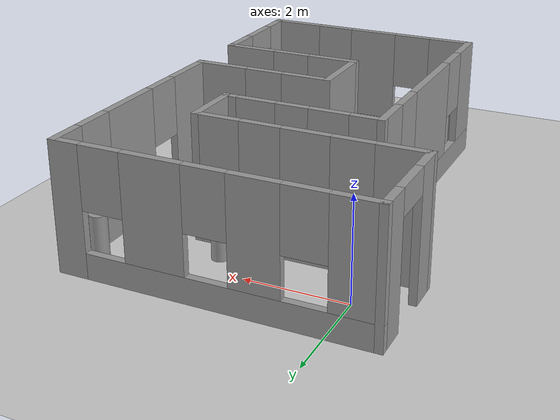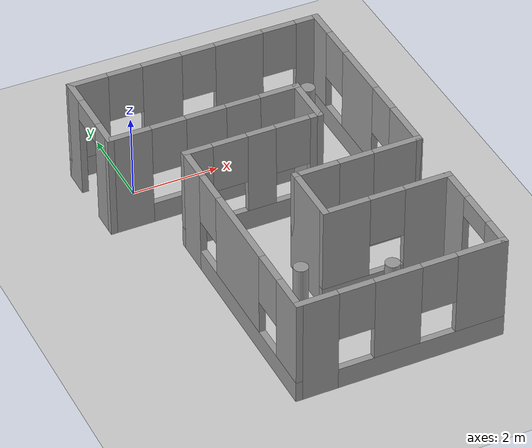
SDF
<sdf version="1.6">
 <world name="default">
  <light name="sun" type="directional">
   <pose>0 0 10 0 -0 0</pose>
   <diffuse>0.8 0.8 0.8 1</diffuse>
   <specular>0.2 0.2 0.2 1</specular>
   <attenuation>
    <range>1000</range>
    <constant>0.9</constant>
    <linear>0.01</linear>
    <quadratic>0.001</quadratic>
   </attenuation>
   <direction>-0.5 0.1 -0.9</direction>
  </light>
  <model name="ground_plane">
   <static>1</static>
   <link name="link">
    <collision name="collision">
     <geometry><plane><normal>0 0 1</normal><size>100 100</size></plane></geometry>
     <surface><friction><ode><mu>100</mu><mu2>50</mu2></ode></friction></surface>
    </collision>
    <visual name="visual">
     <cast_shadows>0</cast_shadows>
     <geometry><plane><normal>0 0 1</normal><size>100 100</size></plane></geometry>
     <material>
      <script><uri>file://media/materials/scripts/gazebo.material</uri><name>Gazebo/Grey</name></script>
     </material>
    </visual>
   </link>
  </model>
  <gravity>0 0 -9.8</gravity>
  <magnetic_field>6e-06 2.3e-05 -4.2e-05</magnetic_field>
  <atmosphere type="adiabatic"/>
  <physics name="default_physics" default="0" type="ode">
   <max_step_size>0.001</max_step_size>
   <real_time_factor>1</real_time_factor>
   <real_time_update_rate>1000</real_time_update_rate>
  </physics>
  <scene><ambient>0.4 0.4 0.4 1</ambient><background>0.7 0.7 0.7 1</background><shadows>1</shadows></scene>
  <spherical_coordinates>
   <surface_model>EARTH_WGS84</surface_model>
   <latitude_deg>0</latitude_deg>
   <longitude_deg>0</longitude_deg>
   <elevation>0</elevation>
   <heading_deg>0</heading_deg>
  </spherical_coordinates>
  <model name="simple_model">
   <pose>2.00923 -3.19242 0 0 -0 1.5706</pose>
   <link name="Wall_11">
    <pose>-3.1 -2.925 0 0 -0 0</pose>
    <visual name="Wall_11_Visual_0">
     <pose>-0.892025 0 1.25 0 -0 0</pose>
     <geometry><box><size>0.715949 0.15 2.5</size></box></geometry>
     <material>
      <script><uri>file://media/materials/scripts/gazebo.material</uri><name>Gazebo/Grey</name></script>
      <ambient>1 1 1 1</ambient>
     </material>
     <meta><layer>0</layer></meta>
    </visual>
    <collision name="Wall_11_Collision_0">
     <geometry><box><size>0.715949 0.15 2.5</size></box></geometry>
     <pose>-0.892025 0 1.25 0 -0 0</pose>
    </collision>
    <visual name="Wall_11_Visual_1">
     <pose>0.807975 0 1.25 0 -0 0</pose>
     <geometry><box><size>0.884051 0.15 2.5</size></box></geometry>
     <material>
      <script><uri>file://media/materials/scripts/gazebo.material</uri><name>Gazebo/Grey</name></script>
      <ambient>1 1 1 1</ambient>
     </material>
     <meta><layer>0</layer></meta>
    </visual>
    <collision name="Wall_11_Collision_1">
     <geometry><box><size>0.884051 0.15 2.5</size></box></geometry>
     <pose>0.807975 0 1.25 0 -0 0</pose>
    </collision>
    <visual name="Wall_11_Visual_2">
     <pose>-0.084051 0 2.25 0 -0 0</pose>
     <geometry><box><size>0.9 0.15 0.5</size></box></geometry>
     <material>
      <script><uri>file://media/materials/scripts/gazebo.material</uri><name>Gazebo/Grey</name></script>
      <ambient>1 1 1 1</ambient>
     </material>
     <meta><layer>0</layer></meta>
    </visual>
    <collision name="Wall_11_Collision_2">
     <geometry><box><size>0.9 0.15 0.5</size></box></geometry>
     <pose>-0.084051 0 2.25 0 -0 0</pose>
    </collision>
   </link>
   <link name="Wall_12">
    <pose>-1.925 -1.5 0 0 -0 1.5708</pose>
    <visual name="Wall_12_Visual_0">
     <pose>-0.943608 0 1.25 0 -0 0</pose>
     <geometry><box><size>1.11278 0.15 2.5</size></box></geometry>
     <material>
      <script><uri>file://media/materials/scripts/gazebo.material</uri><name>Gazebo/Grey</name></script>
      <ambient>1 1 1 1</ambient>
     </material>
     <meta><layer>0</layer></meta>
    </visual>
    <collision name="Wall_12_Collision_0">
     <geometry><box><size>1.11278 0.15 2.5</size></box></geometry>
     <pose>-0.943608 0 1.25 0 -0 0</pose>
    </collision>
    <visual name="Wall_12_Visual_1">
     <pose>0.556392 0 0.25 0 -0 0</pose>
     <geometry><box><size>1.88722 0.15 0.5</size></box></geometry>
     <material>
      <script><uri>file://media/materials/scripts/gazebo.material</uri><name>Gazebo/Grey</name></script>
      <ambient>1 1 1 1</ambient>
     </material>
     <meta><layer>0</layer></meta>
    </visual>
    <collision name="Wall_12_Collision_1">
     <geometry><box><size>1.88722 0.15 0.5</size></box></geometry>
     <pose>0.556392 0 0.25 0 -0 0</pose>
    </collision>
    <visual name="Wall_12_Visual_2">
     <pose>0.956392 0 1.5 0 -0 0</pose>
     <geometry><box><size>1.08722 0.15 2</size></box></geometry>
     <material>
      <script><uri>file://media/materials/scripts/gazebo.material</uri><name>Gazebo/Grey</name></script>
      <ambient>1 1 1 1</ambient>
     </material>
     <meta><layer>0</layer></meta>
    </visual>
    <collision name="Wall_12_Collision_2">
     <geometry><box><size>1.08722 0.15 2</size></box></geometry>
     <pose>0.956392 0 1.5 0 -0 0</pose>
    </collision>
    <visual name="Wall_12_Visual_3">
     <pose>0.012784 0 1.9 0 -0 0</pose>
     <geometry><box><size>0.8 0.15 1.2</size></box></geometry>
     <material>
      <script><uri>file://media/materials/scripts/gazebo.material</uri><name>Gazebo/Grey</name></script>
      <ambient>1 1 1 1</ambient>
     </material>
     <meta><layer>0</layer></meta>
    </visual>
    <collision name="Wall_12_Collision_3">
     <geometry><box><size>0.8 0.15 1.2</size></box></geometry>
     <pose>0.012784 0 1.9 0 -0 0</pose>
    </collision>
   </link>
   <link name="Wall_13">
    <collision name="Wall_13_Collision">
     <geometry><box><size>1.5 0.15 2.5</size></box></geometry>
     <pose>0 0 1.25 0 -0 0</pose>
    </collision>
    <visual name="Wall_13_Visual">
     <pose>0 0 1.25 0 -0 0</pose>
     <geometry><box><size>1.5 0.15 2.5</size></box></geometry>
     <material>
      <script><uri>file://media/materials/scripts/gazebo.material</uri><name>Gazebo/Grey</name></script>
      <ambient>1 1 1 1</ambient>
     </material>
     <meta><layer>0</layer></meta>
    </visual>
    <pose>-1.25 -0.075 0 0 -0 0</pose>
   </link>
   <link name="Wall_14">
    <pose>-0.575 -1.5 0 0 0 -1.5708</pose>
    <visual name="Wall_14_Visual_0">
     <pose>-0.9716 0 1.25 0 -0 0</pose>
     <geometry><box><size>1.0568 0.15 2.5</size></box></geometry>
     <material>
      <script><uri>file://media/materials/scripts/gazebo.material</uri><name>Gazebo/Grey</name></script>
      <ambient>1 1 1 1</ambient>
     </material>
     <meta><layer>0</layer></meta>
    </visual>
    <collision name="Wall_14_Collision_0">
     <geometry><box><size>1.0568 0.15 2.5</size></box></geometry>
     <pose>-0.9716 0 1.25 0 -0 0</pose>
    </collision>
    <visual name="Wall_14_Visual_1">
     <pose>0.5284 0 0.25 0 -0 0</pose>
     <geometry><box><size>1.9432 0.15 0.5</size></box></geometry>
     <material>
      <script><uri>file://media/materials/scripts/gazebo.material</uri><name>Gazebo/Grey</name></script>
      <ambient>1 1 1 1</ambient>
     </material>
     <meta><layer>0</layer></meta>
    </visual>
    <collision name="Wall_14_Collision_1">
     <geometry><box><size>1.9432 0.15 0.5</size></box></geometry>
     <pose>0.5284 0 0.25 0 -0 0</pose>
    </collision>
    <visual name="Wall_14_Visual_2">
     <pose>0.9284 0 1.5 0 -0 0</pose>
     <geometry><box><size>1.1432 0.15 2</size></box></geometry>
     <material>
      <script><uri>file://media/materials/scripts/gazebo.material</uri><name>Gazebo/Grey</name></script>
      <ambient>1 1 1 1</ambient>
     </material>
     <meta><layer>0</layer></meta>
    </visual>
    <collision name="Wall_14_Collision_2">
     <geometry><box><size>1.1432 0.15 2</size></box></geometry>
     <pose>0.9284 0 1.5 0 -0 0</pose>
    </collision>
    <visual name="Wall_14_Visual_3">
     <pose>-0.043201 0 1.9 0 -0 0</pose>
     <geometry><box><size>0.8 0.15 1.2</size></box></geometry>
     <material>
      <script><uri>file://media/materials/scripts/gazebo.material</uri><name>Gazebo/Grey</name></script>
      <ambient>1 1 1 1</ambient>
     </material>
     <meta><layer>0</layer></meta>
    </visual>
    <collision name="Wall_14_Collision_3">
     <geometry><box><size>0.8 0.15 1.2</size></box></geometry>
     <pose>-0.043201 0 1.9 0 -0 0</pose>
    </collision>
   </link>
   <link name="Wall_15">
    <pose>1.85 -2.925 0 0 -0 0</pose>
    <visual name="Wall_15_Visual_0">
     <pose>-1.88343 0 1.25 0 -0 0</pose>
     <geometry><box><size>1.23315 0.15 2.5</size></box></geometry>
     <material>
      <script><uri>file://media/materials/scripts/gazebo.material</uri><name>Gazebo/Grey</name></script>
      <ambient>1 1 1 1</ambient>
     </material>
     <meta><layer>0</layer></meta>
    </visual>
    <collision name="Wall_15_Collision_0">
     <geometry><box><size>1.23315 0.15 2.5</size></box></geometry>
     <pose>-1.88343 0 1.25 0 -0 0</pose>
    </collision>
    <visual name="Wall_15_Visual_1">
     <pose>0.616573 0 0.25 0 -0 0</pose>
     <geometry><box><size>3.76685 0.15 0.5</size></box></geometry>
     <material>
      <script><uri>file://media/materials/scripts/gazebo.material</uri><name>Gazebo/Grey</name></script>
      <ambient>1 1 1 1</ambient>
     </material>
     <meta><layer>0</layer></meta>
    </visual>
    <collision name="Wall_15_Collision_1">
     <geometry><box><size>3.76685 0.15 0.5</size></box></geometry>
     <pose>0.616573 0 0.25 0 -0 0</pose>
    </collision>
    <visual name="Wall_15_Visual_2">
     <pose>0.243386 0 1.5 0 -0 0</pose>
     <geometry><box><size>1.42048 0.15 2</size></box></geometry>
     <material>
      <script><uri>file://media/materials/scripts/gazebo.material</uri><name>Gazebo/Grey</name></script>
      <ambient>1 1 1 1</ambient>
     </material>
     <meta><layer>0</layer></meta>
    </visual>
    <collision name="Wall_15_Collision_2">
     <geometry><box><size>1.42048 0.15 2</size></box></geometry>
     <pose>0.243386 0 1.5 0 -0 0</pose>
    </collision>
    <visual name="Wall_15_Visual_3">
     <pose>2.12681 0 1.5 0 -0 0</pose>
     <geometry><box><size>0.746376 0.15 2</size></box></geometry>
     <material>
      <script><uri>file://media/materials/scripts/gazebo.material</uri><name>Gazebo/Grey</name></script>
      <ambient>1 1 1 1</ambient>
     </material>
     <meta><layer>0</layer></meta>
    </visual>
    <collision name="Wall_15_Collision_3">
     <geometry><box><size>0.746376 0.15 2</size></box></geometry>
     <pose>2.12681 0 1.5 0 -0 0</pose>
    </collision>
    <visual name="Wall_15_Visual_4">
     <pose>-0.866853 0 1.9 0 -0 0</pose>
     <geometry><box><size>0.8 0.15 1.2</size></box></geometry>
     <material>
      <script><uri>file://media/materials/scripts/gazebo.material</uri><name>Gazebo/Grey</name></script>
      <ambient>1 1 1 1</ambient>
     </material>
     <meta><layer>0</layer></meta>
    </visual>
    <collision name="Wall_15_Collision_4">
     <geometry><box><size>0.8 0.15 1.2</size></box></geometry>
     <pose>-0.866853 0 1.9 0 -0 0</pose>
    </collision>
    <visual name="Wall_15_Visual_5">
     <pose>1.35362 0 1.9 0 -0 0</pose>
     <geometry><box><size>0.8 0.15 1.2</size></box></geometry>
     <material>
      <script><uri>file://media/materials/scripts/gazebo.material</uri><name>Gazebo/Grey</name></script>
      <ambient>1 1 1 1</ambient>
     </material>
     <meta><layer>0</layer></meta>
    </visual>
    <collision name="Wall_15_Collision_5">
     <geometry><box><size>0.8 0.15 1.2</size></box></geometry>
     <pose>1.35362 0 1.9 0 -0 0</pose>
    </collision>
   </link>
   <link name="Wall_16">
    <pose>4.275 0 0 0 -0 1.5708</pose>
    <visual name="Wall_16_Visual_0">
     <pose>-2.70216 0 1.25 0 -0 0</pose>
     <geometry><box><size>0.595686 0.15 2.5</size></box></geometry>
     <material>
      <script><uri>file://media/materials/scripts/gazebo.material</uri><name>Gazebo/Grey</name></script>
      <ambient>1 1 1 1</ambient>
     </material>
     <meta><layer>0</layer></meta>
    </visual>
    <collision name="Wall_16_Collision_0">
     <geometry><box><size>0.595686 0.15 2.5</size></box></geometry>
     <pose>-2.70216 0 1.25 0 -0 0</pose>
    </collision>
    <visual name="Wall_16_Visual_1">
     <pose>0.297843 0 0.25 0 -0 0</pose>
     <geometry><box><size>5.40431 0.15 0.5</size></box></geometry>
     <material>
      <script><uri>file://media/materials/scripts/gazebo.material</uri><name>Gazebo/Grey</name></script>
      <ambient>1 1 1 1</ambient>
     </material>
     <meta><layer>0</layer></meta>
    </visual>
    <collision name="Wall_16_Collision_1">
     <geometry><box><size>5.40431 0.15 0.5</size></box></geometry>
     <pose>0.297843 0 0.25 0 -0 0</pose>
    </collision>
    <visual name="Wall_16_Visual_2">
     <pose>-1.03095 0 1.5 0 -0 0</pose>
     <geometry><box><size>1.14672 0.15 2</size></box></geometry>
     <material>
      <script><uri>file://media/materials/scripts/gazebo.material</uri><name>Gazebo/Grey</name></script>
      <ambient>1 1 1 1</ambient>
     </material>
     <meta><layer>0</layer></meta>
    </visual>
    <collision name="Wall_16_Collision_2">
     <geometry><box><size>1.14672 0.15 2</size></box></geometry>
     <pose>-1.03095 0 1.5 0 -0 0</pose>
    </collision>
    <visual name="Wall_16_Visual_3">
     <pose>0.809305 0 1.5 0 -0 0</pose>
     <geometry><box><size>0.933797 0.15 2</size></box></geometry>
     <material>
      <script><uri>file://media/materials/scripts/gazebo.material</uri><name>Gazebo/Grey</name></script>
      <ambient>1 1 1 1</ambient>
     </material>
     <meta><layer>0</layer></meta>
    </visual>
    <collision name="Wall_16_Collision_3">
     <geometry><box><size>0.933797 0.15 2</size></box></geometry>
     <pose>0.809305 0 1.5 0 -0 0</pose>
    </collision>
    <visual name="Wall_16_Visual_4">
     <pose>2.5381 0 1.5 0 -0 0</pose>
     <geometry><box><size>0.923796 0.15 2</size></box></geometry>
     <material>
      <script><uri>file://media/materials/scripts/gazebo.material</uri><name>Gazebo/Grey</name></script>
      <ambient>1 1 1 1</ambient>
     </material>
     <meta><layer>0</layer></meta>
    </visual>
    <collision name="Wall_16_Collision_4">
     <geometry><box><size>0.923796 0.15 2</size></box></geometry>
     <pose>2.5381 0 1.5 0 -0 0</pose>
    </collision>
    <visual name="Wall_16_Visual_5">
     <pose>-2.00431 0 1.9 0 -0 0</pose>
     <geometry><box><size>0.8 0.15 1.2</size></box></geometry>
     <material>
      <script><uri>file://media/materials/scripts/gazebo.material</uri><name>Gazebo/Grey</name></script>
      <ambient>1 1 1 1</ambient>
     </material>
     <meta><layer>0</layer></meta>
    </visual>
    <collision name="Wall_16_Collision_5">
     <geometry><box><size>0.8 0.15 1.2</size></box></geometry>
     <pose>-2.00431 0 1.9 0 -0 0</pose>
    </collision>
    <visual name="Wall_16_Visual_6">
     <pose>-0.057594 0 1.9 0 -0 0</pose>
     <geometry><box><size>0.8 0.15 1.2</size></box></geometry>
     <material>
      <script><uri>file://media/materials/scripts/gazebo.material</uri><name>Gazebo/Grey</name></script>
      <ambient>1 1 1 1</ambient>
     </material>
     <meta><layer>0</layer></meta>
    </visual>
    <collision name="Wall_16_Collision_6">
     <geometry><box><size>0.8 0.15 1.2</size></box></geometry>
     <pose>-0.057594 0 1.9 0 -0 0</pose>
    </collision>
    <visual name="Wall_16_Visual_7">
     <pose>1.6762 0 1.9 0 -0 0</pose>
     <geometry><box><size>0.8 0.15 1.2</size></box></geometry>
     <material>
      <script><uri>file://media/materials/scripts/gazebo.material</uri><name>Gazebo/Grey</name></script>
      <ambient>1 1 1 1</ambient>
     </material>
     <meta><layer>0</layer></meta>
    </visual>
    <collision name="Wall_16_Collision_7">
     <geometry><box><size>0.8 0.15 1.2</size></box></geometry>
     <pose>1.6762 0 1.9 0 -0 0</pose>
    </collision>
   </link>
   <link name="Wall_17">
    <pose>3.225 2.925 0 0 -0 3.14159</pose>
    <visual name="Wall_17_Visual_0">
     <pose>-0.792021 0 1.25 0 -0 0</pose>
     <geometry><box><size>0.665958 0.15 2.5</size></box></geometry>
     <material>
      <script><uri>file://media/materials/scripts/gazebo.material</uri><name>Gazebo/Grey</name></script>
      <ambient>1 1 1 1</ambient>
     </material>
     <meta><layer>0</layer></meta>
    </visual>
    <collision name="Wall_17_Collision_0">
     <geometry><box><size>0.665958 0.15 2.5</size></box></geometry>
     <pose>-0.792021 0 1.25 0 -0 0</pose>
    </collision>
    <visual name="Wall_17_Visual_1">
     <pose>0.782979 0 1.25 0 -0 0</pose>
     <geometry><box><size>0.684042 0.15 2.5</size></box></geometry>
     <material>
      <script><uri>file://media/materials/scripts/gazebo.material</uri><name>Gazebo/Grey</name></script>
      <ambient>1 1 1 1</ambient>
     </material>
     <meta><layer>0</layer></meta>
    </visual>
    <collision name="Wall_17_Collision_1">
     <geometry><box><size>0.684042 0.15 2.5</size></box></geometry>
     <pose>0.782979 0 1.25 0 -0 0</pose>
    </collision>
    <visual name="Wall_17_Visual_2">
     <pose>-0.009042 0 2.25 0 -0 0</pose>
     <geometry><box><size>0.9 0.15 0.5</size></box></geometry>
     <material>
      <script><uri>file://media/materials/scripts/gazebo.material</uri><name>Gazebo/Grey</name></script>
      <ambient>1 1 1 1</ambient>
     </material>
     <meta><layer>0</layer></meta>
    </visual>
    <collision name="Wall_17_Collision_2">
     <geometry><box><size>0.9 0.15 0.5</size></box></geometry>
     <pose>-0.009042 0 2.25 0 -0 0</pose>
    </collision>
   </link>
   <link name="Wall_18">
    <pose>2.175 0.75 0 0 0 -1.5708</pose>
    <visual name="Wall_18_Visual_0">
     <pose>-1.74248 0 1.25 0 -0 0</pose>
     <geometry><box><size>1.01505 0.15 2.5</size></box></geometry>
     <material>
      <script><uri>file://media/materials/scripts/gazebo.material</uri><name>Gazebo/Grey</name></script>
      <ambient>1 1 1 1</ambient>
     </material>
     <meta><layer>0</layer></meta>
    </visual>
    <collision name="Wall_18_Collision_0">
     <geometry><box><size>1.01505 0.15 2.5</size></box></geometry>
     <pose>-1.74248 0 1.25 0 -0 0</pose>
    </collision>
    <visual name="Wall_18_Visual_1">
     <pose>0.507524 0 0.25 0 -0 0</pose>
     <geometry><box><size>3.48495 0.15 0.5</size></box></geometry>
     <material>
      <script><uri>file://media/materials/scripts/gazebo.material</uri><name>Gazebo/Grey</name></script>
      <ambient>1 1 1 1</ambient>
     </material>
     <meta><layer>0</layer></meta>
    </visual>
    <collision name="Wall_18_Collision_1">
     <geometry><box><size>3.48495 0.15 0.5</size></box></geometry>
     <pose>0.507524 0 0.25 0 -0 0</pose>
    </collision>
    <visual name="Wall_18_Visual_2">
     <pose>0.031948 0 1.5 0 -0 0</pose>
     <geometry><box><size>0.933797 0.15 2</size></box></geometry>
     <material>
      <script><uri>file://media/materials/scripts/gazebo.material</uri><name>Gazebo/Grey</name></script>
      <ambient>1 1 1 1</ambient>
     </material>
     <meta><layer>0</layer></meta>
    </visual>
    <collision name="Wall_18_Collision_2">
     <geometry><box><size>0.933797 0.15 2</size></box></geometry>
     <pose>0.031948 0 1.5 0 -0 0</pose>
    </collision>
    <visual name="Wall_18_Visual_3">
     <pose>1.77442 0 1.5 0 -0 0</pose>
     <geometry><box><size>0.951154 0.15 2</size></box></geometry>
     <material>
      <script><uri>file://media/materials/scripts/gazebo.material</uri><name>Gazebo/Grey</name></script>
      <ambient>1 1 1 1</ambient>
     </material>
     <meta><layer>0</layer></meta>
    </visual>
    <collision name="Wall_18_Collision_3">
     <geometry><box><size>0.951154 0.15 2</size></box></geometry>
     <pose>1.77442 0 1.5 0 -0 0</pose>
    </collision>
    <visual name="Wall_18_Visual_4">
     <pose>-0.834951 0 1.9 0 -0 0</pose>
     <geometry><box><size>0.8 0.15 1.2</size></box></geometry>
     <material>
      <script><uri>file://media/materials/scripts/gazebo.material</uri><name>Gazebo/Grey</name></script>
      <ambient>1 1 1 1</ambient>
     </material>
     <meta><layer>0</layer></meta>
    </visual>
    <collision name="Wall_18_Collision_4">
     <geometry><box><size>0.8 0.15 1.2</size></box></geometry>
     <pose>-0.834951 0 1.9 0 -0 0</pose>
    </collision>
    <visual name="Wall_18_Visual_5">
     <pose>0.898846 0 1.9 0 -0 0</pose>
     <geometry><box><size>0.8 0.15 1.2</size></box></geometry>
     <material>
      <script><uri>file://media/materials/scripts/gazebo.material</uri><name>Gazebo/Grey</name></script>
      <ambient>1 1 1 1</ambient>
     </material>
     <meta><layer>0</layer></meta>
    </visual>
    <collision name="Wall_18_Collision_5">
     <geometry><box><size>0.8 0.15 1.2</size></box></geometry>
     <pose>0.898846 0 1.9 0 -0 0</pose>
    </collision>
   </link>
   <link name="Wall_19">
    <collision name="Wall_19_Collision">
     <geometry><box><size>1.25 0.15 2.5</size></box></geometry>
     <pose>0 0 1.25 0 -0 0</pose>
    </collision>
    <visual name="Wall_19_Visual">
     <pose>0 0 1.25 0 -0 0</pose>
     <geometry><box><size>1.25 0.15 2.5</size></box></geometry>
     <material>
      <script><uri>file://media/materials/scripts/gazebo.material</uri><name>Gazebo/Grey</name></script>
      <ambient>1 1 1 1</ambient>
     </material>
     <meta><layer>0</layer></meta>
    </visual>
    <pose>1.625 -1.425 0 0 -0 3.14159</pose>
   </link>
   <link name="Wall_20">
    <pose>1.075 0.125 0 0 -0 1.5708</pose>
    <visual name="Wall_20_Visual_0">
     <pose>-1.46881 0 1.25 0 -0 0</pose>
     <geometry><box><size>0.312386 0.15 2.5</size></box></geometry>
     <material>
      <script><uri>file://media/materials/scripts/gazebo.material</uri><name>Gazebo/Grey</name></script>
      <ambient>1 1 1 1</ambient>
     </material>
     <meta><layer>0</layer></meta>
    </visual>
    <collision name="Wall_20_Collision_0">
     <geometry><box><size>0.312386 0.15 2.5</size></box></geometry>
     <pose>-1.46881 0 1.25 0 -0 0</pose>
    </collision>
    <visual name="Wall_20_Visual_1">
     <pose>0.156193 0 0.25 0 -0 0</pose>
     <geometry><box><size>2.93761 0.15 0.5</size></box></geometry>
     <material>
      <script><uri>file://media/materials/scripts/gazebo.material</uri><name>Gazebo/Grey</name></script>
      <ambient>1 1 1 1</ambient>
     </material>
     <meta><layer>0</layer></meta>
    </visual>
    <collision name="Wall_20_Collision_1">
     <geometry><box><size>2.93761 0.15 0.5</size></box></geometry>
     <pose>0.156193 0 0.25 0 -0 0</pose>
    </collision>
    <visual name="Wall_20_Visual_2">
     <pose>-0.182594 0 1.5 0 -0 0</pose>
     <geometry><box><size>0.66004 0.15 2</size></box></geometry>
     <material>
      <script><uri>file://media/materials/scripts/gazebo.material</uri><name>Gazebo/Grey</name></script>
      <ambient>1 1 1 1</ambient>
     </material>
     <meta><layer>0</layer></meta>
    </visual>
    <collision name="Wall_20_Collision_2">
     <geometry><box><size>0.66004 0.15 2</size></box></geometry>
     <pose>-0.182594 0 1.5 0 -0 0</pose>
    </collision>
    <visual name="Wall_20_Visual_3">
     <pose>1.28621 0 1.5 0 -0 0</pose>
     <geometry><box><size>0.677574 0.15 2</size></box></geometry>
     <material>
      <script><uri>file://media/materials/scripts/gazebo.material</uri><name>Gazebo/Grey</name></script>
      <ambient>1 1 1 1</ambient>
     </material>
     <meta><layer>0</layer></meta>
    </visual>
    <collision name="Wall_20_Collision_3">
     <geometry><box><size>0.677574 0.15 2</size></box></geometry>
     <pose>1.28621 0 1.5 0 -0 0</pose>
    </collision>
    <visual name="Wall_20_Visual_4">
     <pose>-0.912614 0 1.9 0 -0 0</pose>
     <geometry><box><size>0.8 0.15 1.2</size></box></geometry>
     <material>
      <script><uri>file://media/materials/scripts/gazebo.material</uri><name>Gazebo/Grey</name></script>
      <ambient>1 1 1 1</ambient>
     </material>
     <meta><layer>0</layer></meta>
    </visual>
    <collision name="Wall_20_Collision_4">
     <geometry><box><size>0.8 0.15 1.2</size></box></geometry>
     <pose>-0.912614 0 1.9 0 -0 0</pose>
    </collision>
    <visual name="Wall_20_Visual_5">
     <pose>0.547426 0 1.9 0 -0 0</pose>
     <geometry><box><size>0.8 0.15 1.2</size></box></geometry>
     <material>
      <script><uri>file://media/materials/scripts/gazebo.material</uri><name>Gazebo/Grey</name></script>
      <ambient>1 1 1 1</ambient>
     </material>
     <meta><layer>0</layer></meta>
    </visual>
    <collision name="Wall_20_Collision_5">
     <geometry><box><size>0.8 0.15 1.2</size></box></geometry>
     <pose>0.547426 0 1.9 0 -0 0</pose>
    </collision>
   </link>
   <link name="Wall_21">
    <pose>-1.6 1.675 0 0 -0 3.14159</pose>
    <visual name="Wall_21_Visual_0">
     <pose>-2.28864 0 1.25 0 -0 0</pose>
     <geometry><box><size>0.922718 0.15 2.5</size></box></geometry>
     <material>
      <script><uri>file://media/materials/scripts/gazebo.material</uri><name>Gazebo/Grey</name></script>
      <ambient>1 1 1 1</ambient>
     </material>
     <meta><layer>0</layer></meta>
    </visual>
    <collision name="Wall_21_Collision_0">
     <geometry><box><size>0.922718 0.15 2.5</size></box></geometry>
     <pose>-2.28864 0 1.25 0 -0 0</pose>
    </collision>
    <visual name="Wall_21_Visual_1">
     <pose>0.461359 0 0.25 0 -0 0</pose>
     <geometry><box><size>4.57728 0.15 0.5</size></box></geometry>
     <material>
      <script><uri>file://media/materials/scripts/gazebo.material</uri><name>Gazebo/Grey</name></script>
      <ambient>1 1 1 1</ambient>
     </material>
     <meta><layer>0</layer></meta>
    </visual>
    <collision name="Wall_21_Collision_1">
     <geometry><box><size>4.57728 0.15 0.5</size></box></geometry>
     <pose>0.461359 0 0.25 0 -0 0</pose>
    </collision>
    <visual name="Wall_21_Visual_2">
     <pose>0.002341 0 1.5 0 -0 0</pose>
     <geometry><box><size>2.05925 0.15 2</size></box></geometry>
     <material>
      <script><uri>file://media/materials/scripts/gazebo.material</uri><name>Gazebo/Grey</name></script>
      <ambient>1 1 1 1</ambient>
     </material>
     <meta><layer>0</layer></meta>
    </visual>
    <collision name="Wall_21_Collision_2">
     <geometry><box><size>2.05925 0.15 2</size></box></geometry>
     <pose>0.002341 0 1.5 0 -0 0</pose>
    </collision>
    <visual name="Wall_21_Visual_3">
     <pose>2.29098 0 1.5 0 -0 0</pose>
     <geometry><box><size>0.918037 0.15 2</size></box></geometry>
     <material>
      <script><uri>file://media/materials/scripts/gazebo.material</uri><name>Gazebo/Grey</name></script>
      <ambient>1 1 1 1</ambient>
     </material>
     <meta><layer>0</layer></meta>
    </visual>
    <collision name="Wall_21_Collision_3">
     <geometry><box><size>0.918037 0.15 2</size></box></geometry>
     <pose>2.29098 0 1.5 0 -0 0</pose>
    </collision>
    <visual name="Wall_21_Visual_4">
     <pose>-1.42728 0 1.9 0 -0 0</pose>
     <geometry><box><size>0.8 0.15 1.2</size></box></geometry>
     <material>
      <script><uri>file://media/materials/scripts/gazebo.material</uri><name>Gazebo/Grey</name></script>
      <ambient>1 1 1 1</ambient>
     </material>
     <meta><layer>0</layer></meta>
    </visual>
    <collision name="Wall_21_Collision_4">
     <geometry><box><size>0.8 0.15 1.2</size></box></geometry>
     <pose>-1.42728 0 1.9 0 -0 0</pose>
    </collision>
    <visual name="Wall_21_Visual_5">
     <pose>1.43196 0 1.9 0 -0 0</pose>
     <geometry><box><size>0.8 0.15 1.2</size></box></geometry>
     <material>
      <script><uri>file://media/materials/scripts/gazebo.material</uri><name>Gazebo/Grey</name></script>
      <ambient>1 1 1 1</ambient>
     </material>
     <meta><layer>0</layer></meta>
    </visual>
    <collision name="Wall_21_Collision_5">
     <geometry><box><size>0.8 0.15 1.2</size></box></geometry>
     <pose>1.43196 0 1.9 0 -0 0</pose>
    </collision>
   </link>
   <link name="Wall_22">
    <pose>-4.275 -0.625 0 0 0 -1.5708</pose>
    <visual name="Wall_22_Visual_0">
     <pose>-1.89933 0 1.25 0 -0 0</pose>
     <geometry><box><size>0.951331 0.15 2.5</size></box></geometry>
     <material>
      <script><uri>file://media/materials/scripts/gazebo.material</uri><name>Gazebo/Grey</name></script>
      <ambient>1 1 1 1</ambient>
     </material>
     <meta><layer>0</layer></meta>
    </visual>
    <collision name="Wall_22_Collision_0">
     <geometry><box><size>0.951331 0.15 2.5</size></box></geometry>
     <pose>-1.89933 0 1.25 0 -0 0</pose>
    </collision>
    <visual name="Wall_22_Visual_1">
     <pose>0.475666 0 0.25 0 -0 0</pose>
     <geometry><box><size>3.79867 0.15 0.5</size></box></geometry>
     <material>
      <script><uri>file://media/materials/scripts/gazebo.material</uri><name>Gazebo/Grey</name></script>
      <ambient>1 1 1 1</ambient>
     </material>
     <meta><layer>0</layer></meta>
    </visual>
    <collision name="Wall_22_Collision_1">
     <geometry><box><size>3.79867 0.15 0.5</size></box></geometry>
     <pose>0.475666 0 0.25 0 -0 0</pose>
    </collision>
    <visual name="Wall_22_Visual_2">
     <pose>-0.095935 0 1.5 0 -0 0</pose>
     <geometry><box><size>1.05547 0.15 2</size></box></geometry>
     <material>
      <script><uri>file://media/materials/scripts/gazebo.material</uri><name>Gazebo/Grey</name></script>
      <ambient>1 1 1 1</ambient>
     </material>
     <meta><layer>0</layer></meta>
    </visual>
    <collision name="Wall_22_Collision_2">
     <geometry><box><size>1.05547 0.15 2</size></box></geometry>
     <pose>-0.095935 0 1.5 0 -0 0</pose>
    </collision>
    <visual name="Wall_22_Visual_3">
     <pose>1.8034 0 1.5 0 -0 0</pose>
     <geometry><box><size>1.1432 0.15 2</size></box></geometry>
     <material>
      <script><uri>file://media/materials/scripts/gazebo.material</uri><name>Gazebo/Grey</name></script>
      <ambient>1 1 1 1</ambient>
     </material>
     <meta><layer>0</layer></meta>
    </visual>
    <collision name="Wall_22_Collision_3">
     <geometry><box><size>1.1432 0.15 2</size></box></geometry>
     <pose>1.8034 0 1.5 0 -0 0</pose>
    </collision>
    <visual name="Wall_22_Visual_4">
     <pose>-1.02367 0 1.9 0 -0 0</pose>
     <geometry><box><size>0.8 0.15 1.2</size></box></geometry>
     <material>
      <script><uri>file://media/materials/scripts/gazebo.material</uri><name>Gazebo/Grey</name></script>
      <ambient>1 1 1 1</ambient>
     </material>
     <meta><layer>0</layer></meta>
    </visual>
    <collision name="Wall_22_Collision_4">
     <geometry><box><size>0.8 0.15 1.2</size></box></geometry>
     <pose>-1.02367 0 1.9 0 -0 0</pose>
    </collision>
    <visual name="Wall_22_Visual_5">
     <pose>0.831799 0 1.9 0 -0 0</pose>
     <geometry><box><size>0.8 0.15 1.2</size></box></geometry>
     <material>
      <script><uri>file://media/materials/scripts/gazebo.material</uri><name>Gazebo/Grey</name></script>
      <ambient>1 1 1 1</ambient>
     </material>
     <meta><layer>0</layer></meta>
    </visual>
    <collision name="Wall_22_Collision_5">
     <geometry><box><size>0.8 0.15 1.2</size></box></geometry>
     <pose>0.831799 0 1.9 0 -0 0</pose>
    </collision>
   </link>
   <static>1</static>
  </model>
  <model name="unit_cylinder_clone">
   <pose>1.12892 0.613248 0.499991 0 -0 1.1e-05</pose>
   <link name="link">
    <inertial>
     <mass>1</mass>
     <inertia><ixx>0.145833</ixx><ixy>0</ixy><ixz>0</ixz><iyy>0.145833</iyy><iyz>0</iyz><izz>0.125</izz></inertia>
    </inertial>
    <collision name="collision">
     <geometry><cylinder><radius>0.165777</radius><length>1</length></cylinder></geometry>
    </collision>
    <visual name="visual">
     <geometry><cylinder><radius>0.165777</radius><length>1</length></cylinder></geometry>
     <material>
      <script><name>Gazebo/Grey</name><uri>file://media/materials/scripts/gazebo.material</uri></script>
     </material>
    </visual>
   </link>
  </model>
  <model name="unit_cylinder_clone_clone">
   <pose>4.51467 0.610076 0.499992 0 -0 1.1e-05</pose>
   <link name="link">
    <inertial>
     <mass>1</mass>
     <inertia><ixx>0.145833</ixx><ixy>0</ixy><ixz>0</ixz><iyy>0.145833</iyy><iyz>0</iyz><izz>0.125</izz></inertia>
    </inertial>
    <collision name="collision">
     <geometry><cylinder><radius>0.165777</radius><length>1</length></cylinder></geometry>
    </collision>
    <visual name="visual">
     <geometry><cylinder><radius>0.165777</radius><length>1</length></cylinder></geometry>
     <material>
      <script><name>Gazebo/Grey</name><uri>file://media/materials/scripts/gazebo.material</uri></script>
     </material>
    </visual>
   </link>
  </model>
  <model name="unit_cylinder_clone_clone_0">
   <pose>2.73304 -0.508223 0.499999 0 -0 1.1e-05</pose>
   <link name="link">
    <inertial>
     <mass>1</mass>
     <inertia><ixx>0.145833</ixx><ixy>0</ixy><ixz>0</ixz><iyy>0.145833</iyy><iyz>0</iyz><izz>0.125</izz></inertia>
    </inertial>
    <collision name="collision">
     <geometry><cylinder><radius>0.165777</radius><length>1</length></cylinder></geometry>
    </collision>
    <visual name="visual">
     <geometry><cylinder><radius>0.165777</radius><length>1</length></cylinder></geometry>
     <material>
      <script><name>Gazebo/Grey</name><uri>file://media/materials/scripts/gazebo.material</uri></script>
     </material>
    </visual>
   </link>
  </model>
  <model name="unit_cylinder_clone_clone_1">
   <pose>0.928443 -2.68242 0.499991 0 -0 1.1e-05</pose>
   <link name="link">
    <inertial>
     <mass>1</mass>
     <inertia><ixx>0.145833</ixx><ixy>0</ixy><ixz>0</ixz><iyy>0.145833</iyy><iyz>0</iyz><izz>0.125</izz></inertia>
    </inertial>
    <collision name="collision">
     <geometry><cylinder><radius>0.165777</radius><length>1</length></cylinder></geometry>
    </collision>
    <visual name="visual">
     <geometry><cylinder><radius>0.165777</radius><length>1</length></cylinder></geometry>
     <material>
      <script><name>Gazebo/Grey</name><uri>file://media/materials/scripts/gazebo.material</uri></script>
     </material>
    </visual>
   </link>
  </model>
  <model name="unit_cylinder_clone_clone_2">
   <pose>1.6734 -4.86407 0.499999 0 -0 1.1e-05</pose>
   <link name="link">
    <inertial>
     <mass>1</mass>
     <inertia><ixx>0.145833</ixx><ixy>0</ixy><ixz>0</ixz><iyy>0.145833</iyy><iyz>0</iyz><izz>0.125</izz></inertia>
    </inertial>
    <collision name="collision">
     <geometry><cylinder><radius>0.165777</radius><length>1</length></cylinder></geometry>
    </collision>
    <visual name="visual">
     <geometry><cylinder><radius>0.165777</radius><length>1</length></cylinder></geometry>
     <material>
      <script><name>Gazebo/Grey</name><uri>file://media/materials/scripts/gazebo.material</uri></script>
     </material>
    </visual>
   </link>
  </model>
  <model name="unit_cylinder_clone_clone_3">
   <pose>3.43996 -5.56541 0.499999 0 -0 1.1e-05</pose>
   <link name="link">
    <inertial>
     <mass>1</mass>
     <inertia><ixx>0.145833</ixx><ixy>0</ixy><ixz>0</ixz><iyy>0.145833</iyy><iyz>0</iyz><izz>0.125</izz></inertia>
    </inertial>
    <collision name="collision">
     <geometry><cylinder><radius>0.165777</radius><length>1</length></cylinder></geometry>
    </collision>
    <visual name="visual">
     <geometry><cylinder><radius>0.165777</radius><length>1</length></cylinder></geometry>
     <material>
      <script><name>Gazebo/Grey</name><uri>file://media/materials/scripts/gazebo.material</uri></script>
     </material>
    </visual>
   </link>
  </model>
  <model name="unit_cylinder_clone_clone_4">
   <pose>0.744215 -7.12701 0.499991 0 -0 1.1e-05</pose>
   <link name="link">
    <inertial>
     <mass>1</mass>
     <inertia><ixx>0.145833</ixx><ixy>0</ixy><ixz>0</ixz><iyy>0.145833</iyy><iyz>0</iyz><izz>0.125</izz></inertia>
    </inertial>
    <collision name="collision">
     <geometry><cylinder><radius>0.165777</radius><length>1</length></cylinder></geometry>
    </collision>
    <visual name="visual">
     <geometry><cylinder><radius>0.165777</radius><length>1</length></cylinder></geometry>
     <material>
      <script><name>Gazebo/Grey</name><uri>file://media/materials/scripts/gazebo.material</uri></script>
     </material>
    </visual>
   </link>
  </model>
  <model name="unit_cylinder_clone_clone_5">
   <pose>4.53428 -3.37708 0.499999 0 -0 1.1e-05</pose>
   <link name="link">
    <inertial>
     <mass>1</mass>
     <inertia><ixx>0.145833</ixx><ixy>0</ixy><ixz>0</ixz><iyy>0.145833</iyy><iyz>0</iyz><izz>0.125</izz></inertia>
    </inertial>
    <collision name="collision">
     <geometry><cylinder><radius>0.165777</radius><length>1</length></cylinder></geometry>
    </collision>
    <visual name="visual">
     <geometry><cylinder><radius>0.165777</radius><length>1</length></cylinder></geometry>
     <material>
      <script><name>Gazebo/Grey</name><uri>file://media/materials/scripts/gazebo.material</uri></script>
     </material>
    </visual>
   </link>
  </model>
  <model name="unit_cylinder_clone_clone_6">
   <pose>4.44304 -7.13323 0.499991 0 -0 1e-05</pose>
   <link name="link">
    <inertial>
     <mass>1</mass>
     <inertia><ixx>0.145833</ixx><ixy>0</ixy><ixz>0</ixz><iyy>0.145833</iyy><iyz>0</iyz><izz>0.125</izz></inertia>
    </inertial>
    <collision name="collision">
     <geometry><cylinder><radius>0.165777</radius><length>1</length></cylinder></geometry>
    </collision>
    <visual name="visual">
     <geometry><cylinder><radius>0.165777</radius><length>1</length></cylinder></geometry>
     <material>
      <script><name>Gazebo/Grey</name><uri>file://media/materials/scripts/gazebo.material</uri></script>
     </material>
    </visual>
   </link>
  </model>
 </world>
</sdf>
